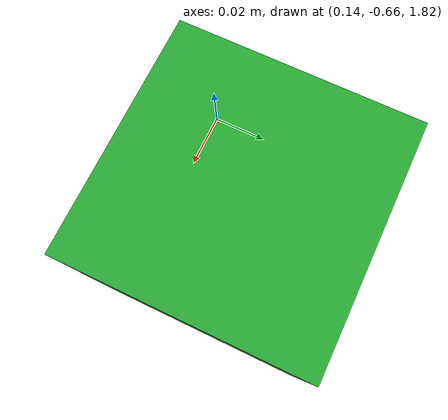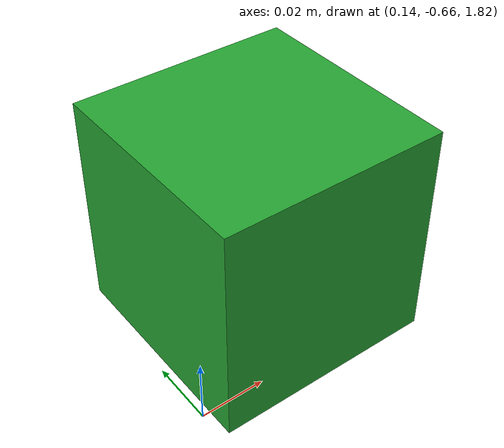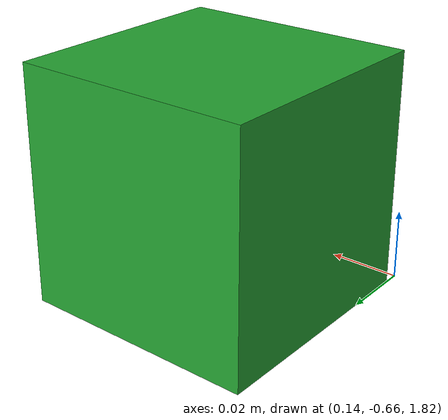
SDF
<?xml version="1.0" ?>
<sdf version="1.4">
  <world name="default">
    <include>
      <uri>model://ground_plane</uri>
    </include>
    <include>
      <uri>model://sun</uri>
    </include>
    <model name='green_box'>
      <link name='link'>
        <inertial>
          <mass>0.0001</mass>
          <inertia>
            <ixx>0.000000816667</ixx>
            <ixy>0</ixy>
            <ixz>0</ixz>
            <iyy>0.000000816667</iyy>
            <iyz>0</iyz>
            <izz>0.000000816667</izz>
          </inertia>
          <pose frame=''>0 0 0 0 -0 0</pose>
        </inertial>
        <self_collide>0</self_collide>
        <enable_wind>0</enable_wind>
        <pose frame=''>0 0 0 0 -0 0</pose>
        <gravity>1</gravity>
        <kinematic>0</kinematic>
        <visual name='visual'>
          <geometry>
            <box>
              <size>0.07 0.07 0.07</size>
            </box>
          </geometry>
          <material>
            <script>
              <name>Gazebo/Green</name>
              <uri>file://media/materials/scripts/gazebo.material</uri>
            </script>
            <shader type='pixel'>
              <normal_map>__default__</normal_map>
            </shader>
          </material>
          <pose frame=''>0 0 0 0 -0 0</pose>
          <transparency>0</transparency>
          <cast_shadows>1</cast_shadows>
        </visual>
        <collision name='collision'>
          <laser_retro>0</laser_retro>
          <max_contacts>10</max_contacts>
          <pose frame=''>0 0 0 0 -0 0</pose>
          <geometry>
            <box>
              <size>0.07 0.07 0.07</size>
            </box>
          </geometry>
          <surface>
            <friction>
              <ode>
                <mu>1</mu>
                <mu2>1</mu2>
                <fdir1>0 0 0</fdir1>
                <slip1>0</slip1>
                <slip2>0</slip2>
              </ode>
              <torsional>
                <coefficient>1</coefficient>
                <patch_radius>0</patch_radius>
                <surface_radius>0</surface_radius>
                <use_patch_radius>1</use_patch_radius>
                <ode>
                  <slip>0</slip>
                </ode>
              </torsional>
            </friction>
            <bounce>
              <restitution_coefficient>0</restitution_coefficient>
              <threshold>1e+06</threshold>
            </bounce>
            <contact>
              <collide_without_contact>0</collide_without_contact>
              <collide_without_contact_bitmask>1</collide_without_contact_bitmask>
              <collide_bitmask>1</collide_bitmask>
              <ode>
                <soft_cfm>0</soft_cfm>
                <soft_erp>0.2</soft_erp>
                <kp>1e+13</kp>
                <kd>1</kd>
                <max_vel>0.01</max_vel>
                <min_depth>0</min_depth>
              </ode>
              <bullet>
                <split_impulse>1</split_impulse>
                <split_impulse_penetration_threshold>-0.01</split_impulse_penetration_threshold>
                <soft_cfm>0</soft_cfm>
                <soft_erp>0.2</soft_erp>
                <kp>1e+13</kp>
                <kd>1</kd>
              </bullet>
            </contact>
          </surface>
        </collision>
      </link>
      <static>0</static>
      <allow_auto_disable>1</allow_auto_disable>
      <pose frame=''>0.18 -0.63 1.849 0 -0 0</pose>
    </model>
  </world>
</sdf>
